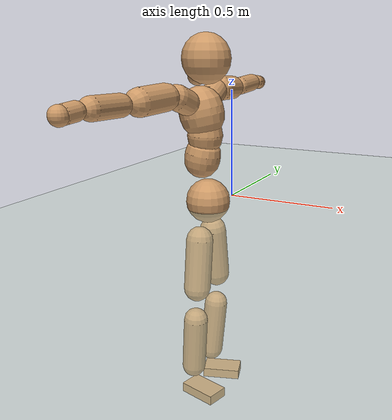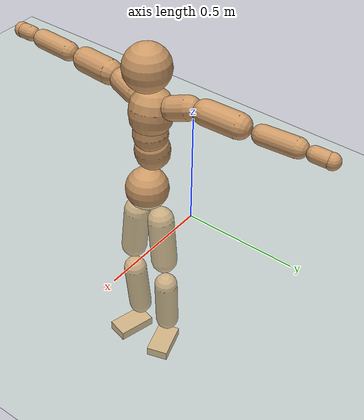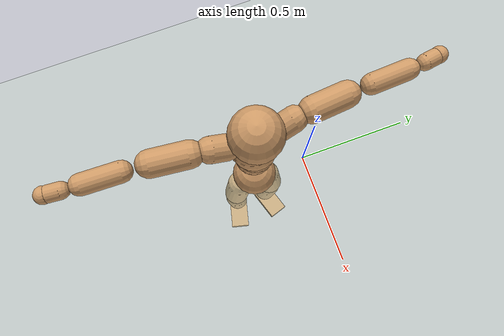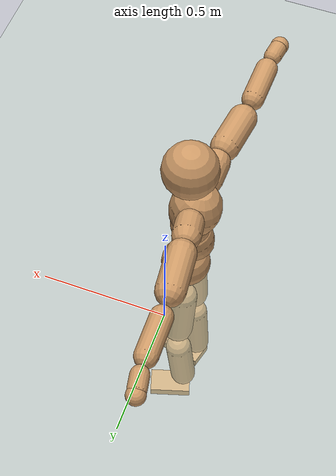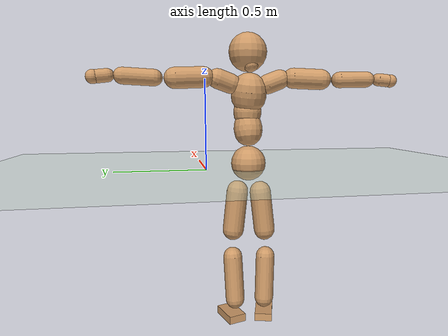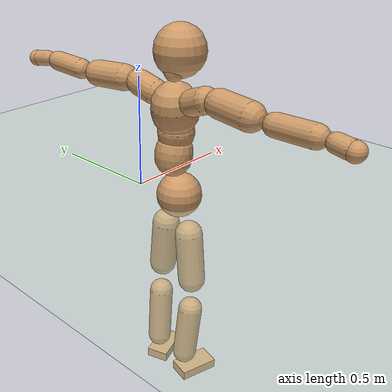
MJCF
<mujoco model="humanoid">
  <compiler coordinate="local"/>
  <default>
    <joint damping="0.0" armature="0.01" stiffness="0.0" limited="true"/>
    <geom conaffinity="1" condim="3" contype="7" margin="0.001" rgba="0.8 0.6 .4 1"/>
  </default>
  <asset>
    <texture type="skybox" builtin="gradient" rgb1=".4 .5 .6" rgb2="0 0 0" width="100" height="100"/>
    <texture builtin="flat" height="1278" mark="cross" markrgb="1 1 1" name="texgeom" random="0.01" rgb1="0.8 0.6 0.4" rgb2="0.8 0.6 0.4" type="cube" width="127"/>
    <texture builtin="checker" height="100" name="texplane" rgb1="0 0 0" rgb2="0.8 0.8 0.8" type="2d" width="100"/>
    <material name="MatPlane" reflectance="0.5" shininess="1" specular="1" texrepeat="60 60" texture="texplane"/>
    <material name="geom" texture="texgeom" texuniform="true"/>
  </asset>
  <worldbody>
    <light cutoff="100" diffuse="1 1 1" dir="-0 0 -1.3" directional="true" exponent="1" pos="0 0 1.3" specular=".1 .1 .1"/>
    <geom conaffinity="1" condim="3" name="floor" pos="0 0 0" rgba="0.8 0.9 0.8 1" size="100 100 .2" type="plane" material="MatPlane"/>
    <body name="Pelvis" pos="-0.0023 -0.2396 0.0347">
      <freejoint name="Pelvis"/>
      <geom type="sphere" contype="1" conaffinity="1" density="500" size="0.0983" pos="0.0000 0.0000 0.0000" name="Pelvis"/>
      <body name="L_Hip" pos="-0.0131 0.0578 -0.0816">
        <joint name="L_Hip_x" type="hinge" pos="0 0 0" axis="1 0 0" stiffness="800" damping="80" armature="0.02" range="-180.0000 180.0000"/>
        <joint name="L_Hip_y" type="hinge" pos="0 0 0" axis="0 1 0" stiffness="800" damping="80" armature="0.02" range="-180.0000 180.0000"/>
        <joint name="L_Hip_z" type="hinge" pos="0 0 0" axis="0 0 1" stiffness="800" damping="80" armature="0.02" range="-180.0000 180.0000"/>
        <geom type="capsule" contype="1" conaffinity="1" density="500" fromto="0.0016 0.0081 -0.0756 0.0066 0.0325 -0.3025" size="0.0604" name="L_Hip"/>
        <body name="L_Knee" pos="0.0082 0.0407 -0.3781">
          <joint name="L_Knee_x" type="hinge" pos="0 0 0" axis="1 0 0" stiffness="800" damping="80" armature="0.02" range="-180.0000 180.0000"/>
          <joint name="L_Knee_y" type="hinge" pos="0 0 0" axis="0 1 0" stiffness="800" damping="80" armature="0.02" range="-180.0000 180.0000"/>
          <joint name="L_Knee_z" type="hinge" pos="0 0 0" axis="0 0 1" stiffness="800" damping="80" armature="0.02" range="-180.0000 180.0000"/>
          <geom type="capsule" contype="1" conaffinity="1" density="500" fromto="-0.0075 -0.0030 -0.0847 -0.0301 -0.0122 -0.3388" size="0.0542" name="L_Knee"/>
          <body name="L_Ankle" pos="-0.0376 -0.0152 -0.4235">
            <joint name="L_Ankle_x" type="hinge" pos="0 0 0" axis="1 0 0" stiffness="800" damping="80" armature="0.02" range="-180.0000 180.0000"/>
            <joint name="L_Ankle_y" type="hinge" pos="0 0 0" axis="0 1 0" stiffness="800" damping="80" armature="0.02" range="-180.0000 180.0000"/>
            <joint name="L_Ankle_z" type="hinge" pos="0 0 0" axis="0 0 1" stiffness="800" damping="80" armature="0.02" range="-180.0000 180.0000"/>
            <geom type="box" contype="1" conaffinity="1" density="500" pos="0.0608 0.0192 -0.0296" size="0.0878 0.0505 0.0223" quat="0.9883 0.0000 0.0000 0.1524" name="L_Ankle"/>
            <body name="L_Toe" pos="0.1215 0.0384 -0.0592">
              <joint name="L_Toe_x" type="hinge" pos="0 0 0" axis="1 0 0" stiffness="500" damping="50" armature="0.02" range="-180.0000 180.0000"/>
              <joint name="L_Toe_y" type="hinge" pos="0 0 0" axis="0 1 0" stiffness="500" damping="50" armature="0.02" range="-180.0000 180.0000"/>
              <joint name="L_Toe_z" type="hinge" pos="0 0 0" axis="0 0 1" stiffness="500" damping="50" armature="0.02" range="-180.0000 180.0000"/>
              <geom type="box" contype="1" conaffinity="1" density="500" pos="0.0000 0.0000 0.0288" size="0.0011 0.0025 0.0011" quat="0.9875 0.0000 0.0000 0.1573" name="L_Toe"/>
            </body>
          </body>
        </body>
      </body>
      <body name="R_Hip" pos="-0.0081 -0.0595 -0.0906">
        <joint name="R_Hip_x" type="hinge" pos="0 0 0" axis="1 0 0" stiffness="800" damping="80" armature="0.02" range="-180.0000 180.0000"/>
        <joint name="R_Hip_y" type="hinge" pos="0 0 0" axis="0 1 0" stiffness="800" damping="80" armature="0.02" range="-180.0000 180.0000"/>
        <joint name="R_Hip_z" type="hinge" pos="0 0 0" axis="0 0 1" stiffness="800" damping="80" armature="0.02" range="-180.0000 180.0000"/>
        <geom type="capsule" contype="1" conaffinity="1" density="500" fromto="-0.0008 -0.0082 -0.0754 -0.0033 -0.0330 -0.3014" size="0.0599" name="R_Hip"/>
        <body name="R_Knee" pos="-0.0042 -0.0412 -0.3768">
          <joint name="R_Knee_x" type="hinge" pos="0 0 0" axis="1 0 0" stiffness="800" damping="80" armature="0.02" range="-180.0000 180.0000"/>
          <joint name="R_Knee_y" type="hinge" pos="0 0 0" axis="0 1 0" stiffness="800" damping="80" armature="0.02" range="-180.0000 180.0000"/>
          <joint name="R_Knee_z" type="hinge" pos="0 0 0" axis="0 0 1" stiffness="800" damping="80" armature="0.02" range="-180.0000 180.0000"/>
          <geom type="capsule" contype="1" conaffinity="1" density="500" fromto="-0.0069 0.0038 -0.0834 -0.0275 0.0152 -0.3336" size="0.0544" name="R_Knee"/>
          <body name="R_Ankle" pos="-0.0344 0.019 -0.417">
            <joint name="R_Ankle_x" type="hinge" pos="0 0 0" axis="1 0 0" stiffness="800" damping="80" armature="0.02" range="-180.0000 180.0000"/>
            <joint name="R_Ankle_y" type="hinge" pos="0 0 0" axis="0 1 0" stiffness="800" damping="80" armature="0.02" range="-180.0000 180.0000"/>
            <joint name="R_Ankle_z" type="hinge" pos="0 0 0" axis="0 0 1" stiffness="800" damping="80" armature="0.02" range="-180.0000 180.0000"/>
            <geom type="box" contype="1" conaffinity="1" density="500" pos="0.0644 -0.0168 -0.0308" size="0.0897 0.0503 0.0222" quat="0.9919 0.0000 0.0000 -0.1269" name="R_Ankle"/>
            <body name="R_Toe" pos="0.1289 -0.0335 -0.0616">
              <joint name="R_Toe_x" type="hinge" pos="0 0 0" axis="1 0 0" stiffness="500" damping="50" armature="0.02" range="-180.0000 180.0000"/>
              <joint name="R_Toe_y" type="hinge" pos="0 0 0" axis="0 1 0" stiffness="500" damping="50" armature="0.02" range="-180.0000 180.0000"/>
              <joint name="R_Toe_z" type="hinge" pos="0 0 0" axis="0 0 1" stiffness="500" damping="50" armature="0.02" range="-180.0000 180.0000"/>
              <geom type="box" contype="1" conaffinity="1" density="500" pos="0.0000 0.0000 0.0303" size="0.0011 0.0025 0.0011" quat="0.9930 0.0000 0.0000 -0.1179" name="R_Toe"/>
            </body>
          </body>
        </body>
      </body>
      <body name="Torso" pos="-0.0417 0.0046 0.1261">
        <joint name="Torso_x" type="hinge" pos="0 0 0" axis="1 0 0" stiffness="1000" damping="100" armature="0.02" range="-180.0000 180.0000"/>
        <joint name="Torso_y" type="hinge" pos="0 0 0" axis="0 1 0" stiffness="1000" damping="100" armature="0.02" range="-180.0000 180.0000"/>
        <joint name="Torso_z" type="hinge" pos="0 0 0" axis="0 0 1" stiffness="1000" damping="100" armature="0.02" range="-180.0000 180.0000"/>
        <geom type="capsule" contype="1" conaffinity="1" density="500" fromto="0.0148 0.0029 0.0807 0.0099 0.0019 0.0538" size="0.07905" name="Torso"/>
        <body name="Spine" pos="0.0247 0.0048 0.1346">
          <joint name="Spine_x" type="hinge" pos="0 0 0" axis="1 0 0" stiffness="1000" damping="100" armature="0.02" range="-180.0000 180.0000"/>
          <joint name="Spine_y" type="hinge" pos="0 0 0" axis="0 1 0" stiffness="1000" damping="100" armature="0.02" range="-180.0000 180.0000"/>
          <joint name="Spine_z" type="hinge" pos="0 0 0" axis="0 0 1" stiffness="1000" damping="100" armature="0.02" range="-180.0000 180.0000"/>
          <geom type="capsule" contype="1" conaffinity="1" density="500" fromto="0.0016 -0.0014 0.0327 0.0011 -0.0010 0.0218" size="0.077562" name="Spine"/>
          <body name="Chest" pos="0.0026 -0.0024 0.0545">
            <joint name="Chest_x" type="hinge" pos="0 0 0" axis="1 0 0" stiffness="1000" damping="100" armature="0.02" range="-180.0000 180.0000"/>
            <joint name="Chest_y" type="hinge" pos="0 0 0" axis="0 1 0" stiffness="1000" damping="100" armature="0.02" range="-180.0000 180.0000"/>
            <joint name="Chest_z" type="hinge" pos="0 0 0" axis="0 0 1" stiffness="1000" damping="100" armature="0.02" range="-180.0000 180.0000"/>
            <geom type="capsule" contype="1" conaffinity="1" density="500" fromto="-0.0174 -0.0050 0.0877 -0.0116 -0.0033 0.0585" size="0.097371" name="Chest"/>
            <body name="Neck" pos="-0.0388 -0.0135 0.211">
              <joint name="Neck_x" type="hinge" pos="0 0 0" axis="1 0 0" stiffness="500" damping="50" armature="0.02" range="-180.0000 180.0000"/>
              <joint name="Neck_y" type="hinge" pos="0 0 0" axis="0 1 0" stiffness="500" damping="50" armature="0.02" range="-180.0000 180.0000"/>
              <joint name="Neck_z" type="hinge" pos="0 0 0" axis="0 0 1" stiffness="500" damping="50" armature="0.02" range="-180.0000 180.0000"/>
              <geom type="capsule" contype="1" conaffinity="1" density="500" fromto="0.0099 0.0020 0.0168 0.0396 0.0079 0.0674" size="0.042966" name="Neck"/>
              <body name="Head" pos="0.0495 0.0099 0.0842">
                <joint name="Head_x" type="hinge" pos="0 0 0" axis="1 0 0" stiffness="500" damping="50" armature="0.02" range="-180.0000 180.0000"/>
                <joint name="Head_y" type="hinge" pos="0 0 0" axis="0 1 0" stiffness="500" damping="50" armature="0.02" range="-180.0000 180.0000"/>
                <joint name="Head_z" type="hinge" pos="0 0 0" axis="0 0 1" stiffness="500" damping="50" armature="0.02" range="-180.0000 180.0000"/>
                <geom type="sphere" contype="1" conaffinity="1" density="500" size="0.1056" pos="0.0000 0.0000 0.0000" name="Head"/>
              </body>
            </body>
            <body name="L_Thorax" pos="-0.0224 0.0716 0.1143">
              <joint name="L_Thorax_x" type="hinge" pos="0 0 0" axis="1 0 0" stiffness="500" damping="50" armature="0.02" range="-180.0000 180.0000"/>
              <joint name="L_Thorax_y" type="hinge" pos="0 0 0" axis="0 1 0" stiffness="500" damping="50" armature="0.02" range="-180.0000 180.0000"/>
              <joint name="L_Thorax_z" type="hinge" pos="0 0 0" axis="0 0 1" stiffness="500" damping="50" armature="0.02" range="-180.0000 180.0000"/>
              <geom type="capsule" contype="1" conaffinity="1" density="500" fromto="-0.0042 0.0247 0.0085 -0.0166 0.0988 0.0340" size="0.0534" name="L_Thorax"/>
              <body name="L_Shoulder" pos="-0.0208 0.1235 0.0425">
                <joint name="L_Shoulder_x" type="hinge" pos="0 0 0" axis="1 0 0" stiffness="500" damping="50" armature="0.02" range="-720.0000 720.0000"/>
                <joint name="L_Shoulder_y" type="hinge" pos="0 0 0" axis="0 1 0" stiffness="500" damping="50" armature="0.02" range="-720.0000 720.0000"/>
                <joint name="L_Shoulder_z" type="hinge" pos="0 0 0" axis="0 0 1" stiffness="500" damping="50" armature="0.02" range="-720.0000 720.0000"/>
                <geom type="capsule" contype="1" conaffinity="1" density="500" fromto="-0.0047 0.0504 -0.0026 -0.0190 0.2016 -0.0104" size="0.0554" name="L_Shoulder"/>
                <body name="L_Elbow" pos="-0.0237 0.252 -0.013">
                  <joint name="L_Elbow_x" type="hinge" pos="0 0 0" axis="1 0 0" stiffness="500" damping="50" armature="0.02" range="-720.0000 720.0000"/>
                  <joint name="L_Elbow_y" type="hinge" pos="0 0 0" axis="0 1 0" stiffness="500" damping="50" armature="0.02" range="-720.0000 720.0000"/>
                  <joint name="L_Elbow_z" type="hinge" pos="0 0 0" axis="0 0 1" stiffness="500" damping="50" armature="0.02" range="-720.0000 720.0000"/>
                  <geom type="capsule" contype="1" conaffinity="1" density="500" fromto="-0.0016 0.0527 0.0024 -0.0062 0.2107 0.0096" size="0.043" name="L_Elbow"/>
                  <body name="L_Wrist" pos="-0.0078 0.2634 0.012">
                    <joint name="L_Wrist_x" type="hinge" pos="0 0 0" axis="1 0 0" stiffness="300" damping="30" armature="0.02" range="-180.0000 180.0000"/>
                    <joint name="L_Wrist_y" type="hinge" pos="0 0 0" axis="0 1 0" stiffness="300" damping="30" armature="0.02" range="-180.0000 180.0000"/>
                    <joint name="L_Wrist_z" type="hinge" pos="0 0 0" axis="0 0 1" stiffness="300" damping="30" armature="0.02" range="-180.0000 180.0000"/>
                    <geom type="capsule" contype="1" conaffinity="1" density="500" fromto="-0.0031 0.0172 -0.0021 -0.0123 0.0688 -0.0083" size="0.0341" name="L_Wrist"/>
                    <body name="L_Hand" pos="-0.0153 0.0861 -0.0104">
                      <joint name="L_Hand_x" type="hinge" pos="0 0 0" axis="1 0 0" stiffness="300" damping="30" armature="0.02" range="-180.0000 180.0000"/>
                      <joint name="L_Hand_y" type="hinge" pos="0 0 0" axis="0 1 0" stiffness="300" damping="30" armature="0.02" range="-180.0000 180.0000"/>
                      <joint name="L_Hand_z" type="hinge" pos="0 0 0" axis="0 0 1" stiffness="300" damping="30" armature="0.02" range="-180.0000 180.0000"/>
                      <geom type="sphere" contype="1" conaffinity="1" density="500" size="0.0354" pos="0.0000 0.0000 0.0000" name="L_Hand"/>
                    </body>
                  </body>
                </body>
              </body>
            </body>
            <body name="R_Thorax" pos="-0.026 -0.083 0.1133">
              <joint name="R_Thorax_x" type="hinge" pos="0 0 0" axis="1 0 0" stiffness="500" damping="50" armature="0.02" range="-180.0000 180.0000"/>
              <joint name="R_Thorax_y" type="hinge" pos="0 0 0" axis="0 1 0" stiffness="500" damping="50" armature="0.02" range="-180.0000 180.0000"/>
              <joint name="R_Thorax_z" type="hinge" pos="0 0 0" axis="0 0 1" stiffness="500" damping="50" armature="0.02" range="-180.0000 180.0000"/>
              <geom type="capsule" contype="1" conaffinity="1" density="500" fromto="-0.0020 -0.0226 0.0088 -0.0078 -0.0903 0.0351" size="0.0534" name="R_Thorax"/>
              <body name="R_Shoulder" pos="-0.0098 -0.1129 0.0439">
                <joint name="R_Shoulder_x" type="hinge" pos="0 0 0" axis="1 0 0" stiffness="500" damping="50" armature="0.02" range="-720.0000 720.0000"/>
                <joint name="R_Shoulder_y" type="hinge" pos="0 0 0" axis="0 1 0" stiffness="500" damping="50" armature="0.02" range="-720.0000 720.0000"/>
                <joint name="R_Shoulder_z" type="hinge" pos="0 0 0" axis="0 0 1" stiffness="500" damping="50" armature="0.02" range="-720.0000 720.0000"/>
                <geom type="capsule" contype="1" conaffinity="1" density="500" fromto="-0.0062 -0.0514 -0.0020 -0.0248 -0.2057 -0.0081" size="0.0559" name="R_Shoulder"/>
                <body name="R_Elbow" pos="-0.0309 -0.2571 -0.0101">
                  <joint name="R_Elbow_x" type="hinge" pos="0 0 0" axis="1 0 0" stiffness="500" damping="50" armature="0.02" range="-720.0000 720.0000"/>
                  <joint name="R_Elbow_y" type="hinge" pos="0 0 0" axis="0 1 0" stiffness="500" damping="50" armature="0.02" range="-720.0000 720.0000"/>
                  <joint name="R_Elbow_z" type="hinge" pos="0 0 0" axis="0 0 1" stiffness="500" damping="50" armature="0.02" range="-720.0000 720.0000"/>
                  <geom type="capsule" contype="1" conaffinity="1" density="500" fromto="-0.0013 -0.0532 0.0014 -0.0053 -0.2127 0.0054" size="0.0437" name="R_Elbow"/>
                  <body name="R_Wrist" pos="-0.0067 -0.2658 0.0068">
                    <joint name="R_Wrist_x" type="hinge" pos="0 0 0" axis="1 0 0" stiffness="300" damping="30" armature="0.02" range="-180.0000 180.0000"/>
                    <joint name="R_Wrist_y" type="hinge" pos="0 0 0" axis="0 1 0" stiffness="300" damping="30" armature="0.02" range="-180.0000 180.0000"/>
                    <joint name="R_Wrist_z" type="hinge" pos="0 0 0" axis="0 0 1" stiffness="300" damping="30" armature="0.02" range="-180.0000 180.0000"/>
                    <geom type="capsule" contype="1" conaffinity="1" density="500" fromto="-0.0020 -0.0176 -0.0017 -0.0079 -0.0706 -0.0069" size="0.0348" name="R_Wrist"/>
                    <body name="R_Hand" pos="-0.0099 -0.0882 -0.0086">
                      <joint name="R_Hand_x" type="hinge" pos="0 0 0" axis="1 0 0" stiffness="300" damping="30" armature="0.02" range="-180.0000 180.0000"/>
                      <joint name="R_Hand_y" type="hinge" pos="0 0 0" axis="0 1 0" stiffness="300" damping="30" armature="0.02" range="-180.0000 180.0000"/>
                      <joint name="R_Hand_z" type="hinge" pos="0 0 0" axis="0 0 1" stiffness="300" damping="30" armature="0.02" range="-180.0000 180.0000"/>
                      <geom type="sphere" contype="1" conaffinity="1" density="500" size="0.0360" pos="0.0000 0.0000 0.0000" name="R_Hand"/>
                    </body>
                  </body>
                </body>
              </body>
            </body>
          </body>
        </body>
      </body>
    </body>
  </worldbody>
  <actuator>
    <motor name="L_Hip_x" joint="L_Hip_x" gear="500"/>
    <motor name="L_Hip_y" joint="L_Hip_y" gear="500"/>
    <motor name="L_Hip_z" joint="L_Hip_z" gear="500"/>
    <motor name="L_Knee_x" joint="L_Knee_x" gear="500"/>
    <motor name="L_Knee_y" joint="L_Knee_y" gear="500"/>
    <motor name="L_Knee_z" joint="L_Knee_z" gear="500"/>
    <motor name="L_Ankle_x" joint="L_Ankle_x" gear="500"/>
    <motor name="L_Ankle_y" joint="L_Ankle_y" gear="500"/>
    <motor name="L_Ankle_z" joint="L_Ankle_z" gear="500"/>
    <motor name="L_Toe_x" joint="L_Toe_x" gear="500"/>
    <motor name="L_Toe_y" joint="L_Toe_y" gear="500"/>
    <motor name="L_Toe_z" joint="L_Toe_z" gear="500"/>
    <motor name="R_Hip_x" joint="R_Hip_x" gear="500"/>
    <motor name="R_Hip_y" joint="R_Hip_y" gear="500"/>
    <motor name="R_Hip_z" joint="R_Hip_z" gear="500"/>
    <motor name="R_Knee_x" joint="R_Knee_x" gear="500"/>
    <motor name="R_Knee_y" joint="R_Knee_y" gear="500"/>
    <motor name="R_Knee_z" joint="R_Knee_z" gear="500"/>
    <motor name="R_Ankle_x" joint="R_Ankle_x" gear="500"/>
    <motor name="R_Ankle_y" joint="R_Ankle_y" gear="500"/>
    <motor name="R_Ankle_z" joint="R_Ankle_z" gear="500"/>
    <motor name="R_Toe_x" joint="R_Toe_x" gear="500"/>
    <motor name="R_Toe_y" joint="R_Toe_y" gear="500"/>
    <motor name="R_Toe_z" joint="R_Toe_z" gear="500"/>
    <motor name="Torso_x" joint="Torso_x" gear="500"/>
    <motor name="Torso_y" joint="Torso_y" gear="500"/>
    <motor name="Torso_z" joint="Torso_z" gear="500"/>
    <motor name="Spine_x" joint="Spine_x" gear="500"/>
    <motor name="Spine_y" joint="Spine_y" gear="500"/>
    <motor name="Spine_z" joint="Spine_z" gear="500"/>
    <motor name="Chest_x" joint="Chest_x" gear="500"/>
    <motor name="Chest_y" joint="Chest_y" gear="500"/>
    <motor name="Chest_z" joint="Chest_z" gear="500"/>
    <motor name="Neck_x" joint="Neck_x" gear="500"/>
    <motor name="Neck_y" joint="Neck_y" gear="500"/>
    <motor name="Neck_z" joint="Neck_z" gear="500"/>
    <motor name="Head_x" joint="Head_x" gear="500"/>
    <motor name="Head_y" joint="Head_y" gear="500"/>
    <motor name="Head_z" joint="Head_z" gear="500"/>
    <motor name="L_Thorax_x" joint="L_Thorax_x" gear="500"/>
    <motor name="L_Thorax_y" joint="L_Thorax_y" gear="500"/>
    <motor name="L_Thorax_z" joint="L_Thorax_z" gear="500"/>
    <motor name="L_Shoulder_x" joint="L_Shoulder_x" gear="500"/>
    <motor name="L_Shoulder_y" joint="L_Shoulder_y" gear="500"/>
    <motor name="L_Shoulder_z" joint="L_Shoulder_z" gear="500"/>
    <motor name="L_Elbow_x" joint="L_Elbow_x" gear="500"/>
    <motor name="L_Elbow_y" joint="L_Elbow_y" gear="500"/>
    <motor name="L_Elbow_z" joint="L_Elbow_z" gear="500"/>
    <motor name="L_Wrist_x" joint="L_Wrist_x" gear="500"/>
    <motor name="L_Wrist_y" joint="L_Wrist_y" gear="500"/>
    <motor name="L_Wrist_z" joint="L_Wrist_z" gear="500"/>
    <motor name="L_Hand_x" joint="L_Hand_x" gear="500"/>
    <motor name="L_Hand_y" joint="L_Hand_y" gear="500"/>
    <motor name="L_Hand_z" joint="L_Hand_z" gear="500"/>
    <motor name="R_Thorax_x" joint="R_Thorax_x" gear="500"/>
    <motor name="R_Thorax_y" joint="R_Thorax_y" gear="500"/>
    <motor name="R_Thorax_z" joint="R_Thorax_z" gear="500"/>
    <motor name="R_Shoulder_x" joint="R_Shoulder_x" gear="500"/>
    <motor name="R_Shoulder_y" joint="R_Shoulder_y" gear="500"/>
    <motor name="R_Shoulder_z" joint="R_Shoulder_z" gear="500"/>
    <motor name="R_Elbow_x" joint="R_Elbow_x" gear="500"/>
    <motor name="R_Elbow_y" joint="R_Elbow_y" gear="500"/>
    <motor name="R_Elbow_z" joint="R_Elbow_z" gear="500"/>
    <motor name="R_Wrist_x" joint="R_Wrist_x" gear="500"/>
    <motor name="R_Wrist_y" joint="R_Wrist_y" gear="500"/>
    <motor name="R_Wrist_z" joint="R_Wrist_z" gear="500"/>
    <motor name="R_Hand_x" joint="R_Hand_x" gear="500"/>
    <motor name="R_Hand_y" joint="R_Hand_y" gear="500"/>
    <motor name="R_Hand_z" joint="R_Hand_z" gear="500"/>
  </actuator>
  <contact>
    <exclude body1="Torso" body2="Chest"/>
    <exclude body1="Head" body2="Chest"/>
    <exclude body1="R_Knee" body2="R_Toe"/>
    <exclude body1="R_Knee" body2="L_Ankle"/>
    <exclude body1="R_Knee" body2="L_Toe"/>
    <exclude body1="L_Knee" body2="L_Toe"/>
    <exclude body1="L_Knee" body2="R_Ankle"/>
    <exclude body1="L_Knee" body2="R_Toe"/>
    <exclude body1="L_Shoulder" body2="Chest"/>
    <exclude body1="R_Shoulder" body2="Chest"/>
  </contact>
  <sensor/>
  <size njmax="700" nconmax="700"/>
</mujoco>
